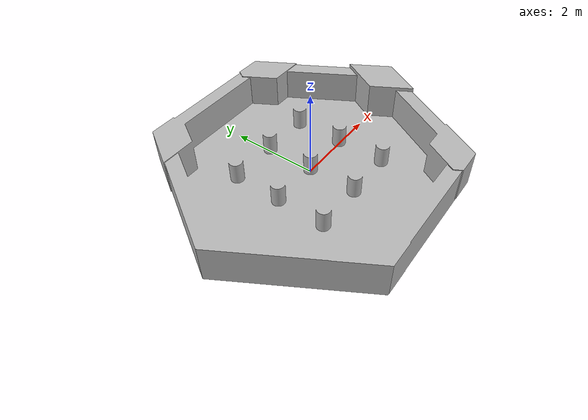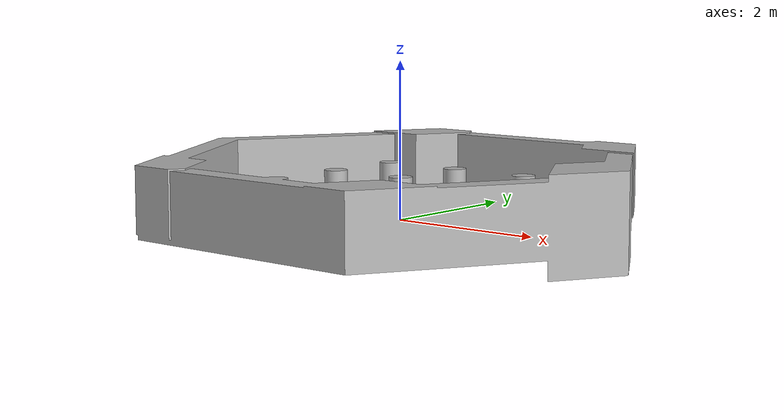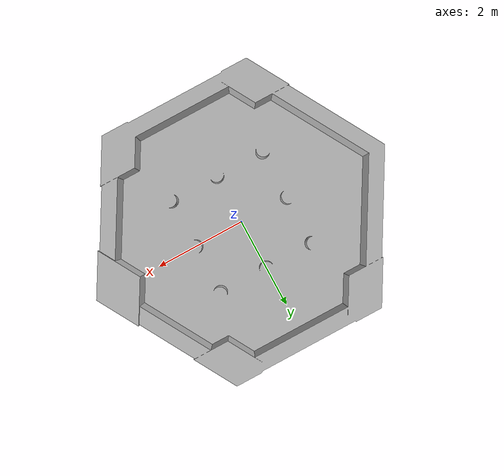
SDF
<?xml version="1.0"?>

<sdf version="1.6">
  <model name="turtlebot_env">
    <pose>0.0 0.0 0.0 0.0 0.0 0.0</pose>
    <static>true</static>

    <link name="bartender_main_link">
      <pose>0.0 0.0 0.05 0.0 0.0 0.0</pose>

      <collision name="collision">
        <pose>0 0 0 0 0 0</pose>
        <geometry>
          <mesh>
            <uri>model://turtlebot_env/meshes/turtlebot_env_col.stl</uri>
          </mesh>
        </geometry>
      </collision>

      <visual name="visual_walls">
        <pose>0 0 0 0 0 0</pose>
        <geometry>
          <mesh>
            <uri>model://turtlebot_env/meshes/turtlebot_env_HD.dae</uri>
          </mesh>
        </geometry>
      </visual>

    </link>

  </model>
</sdf>
